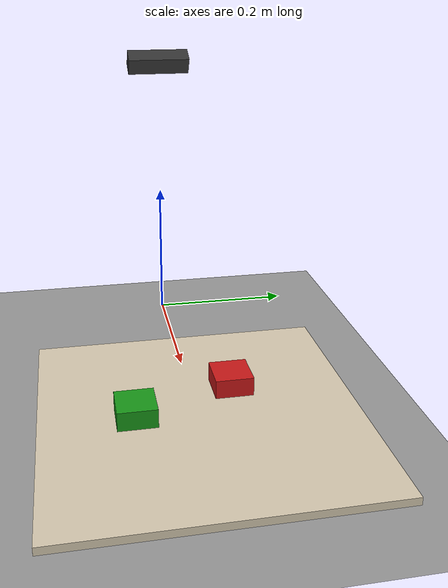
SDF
<?xml version="1.0"?>
<sdf version="1.9">
  <world name="aruco_test_world">

    <!-- Lighting -->
    <light name="sun" type="directional">
      <cast_shadows>true</cast_shadows>
      <direction>-0.5 0.1 -0.9</direction>
      <diffuse>0.9 0.9 0.9 1</diffuse>
      <specular>0.3 0.3 0.3 1</specular>
    </light>

    <!-- Physics -->
    <physics name="1ms" type="ignored">
      <max_step_size>0.001</max_step_size>
      <real_time_factor>1.0</real_time_factor>
    </physics>

    <!-- Required Ignition system plugins -->
    <plugin filename="ignition-gazebo-physics-system"
            name="ignition::gazebo::systems::Physics"/>
    <plugin filename="ignition-gazebo-sensors-system"
            name="ignition::gazebo::systems::Sensors">
      <render_engine>ogre2</render_engine>
    </plugin>
    <plugin filename="ignition-gazebo-scene-broadcaster-system"
            name="ignition::gazebo::systems::SceneBroadcaster"/>
    <plugin filename="ignition-gazebo-user-commands-system"
            name="ignition::gazebo::systems::UserCommands"/>

    <!-- Ground plane -->
    <model name="ground_plane">
      <static>true</static>
      <link name="link">
        <collision name="collision">
          <geometry><plane><normal>0 0 1</normal></plane></geometry>
        </collision>
        <visual name="visual">
          <geometry>
            <plane><normal>0 0 1</normal><size>10 10</size></plane>
          </geometry>
          <material>
            <ambient>0.6 0.6 0.6 1</ambient>
            <diffuse>0.6 0.6 0.6 1</diffuse>
          </material>
        </visual>
      </link>
    </model>

    <!--
      Camera: positioned 40cm above the table surface,
      tilted 30 degrees downward to look at the workspace.
      pose = x y z roll pitch yaw
    -->
    <include>
      <uri>model://realsense_d435i</uri>
      <name>d435i_camera</name>
      <pose>0 0 0.4  0 0.52 0</pose>
    </include>

    <!--
      Puzzle workspace table — represents the physical puzzle board.
      Placed 35cm in front of the camera, flat on the ground.
    -->
    <model name="puzzle_workspace">
      <static>true</static>
      <pose>0.35 0 0.01  0 0 0</pose>
      <link name="link">
        <visual name="visual">
          <geometry>
            <box><size>0.40 0.40 0.01</size></box>
          </geometry>
          <material>
            <ambient>0.85 0.80 0.70 1</ambient>
            <diffuse>0.85 0.80 0.70 1</diffuse>
          </material>
        </visual>
        <collision name="collision">
          <geometry>
            <box><size>0.40 0.40 0.01</size></box>
          </geometry>
        </collision>
      </link>
    </model>

    <!--
      Marker object 1 — represents a puzzle piece with an ArUco marker.
      A bright-coloured block so you can see it clearly in the camera feed.
    -->
    <model name="puzzle_piece_0">
      <static>true</static>
      <pose>0.30 0.05 0.025  0 0 0</pose>
      <link name="link">
        <visual name="visual">
          <geometry><box><size>0.05 0.05 0.03</size></box></geometry>
          <material>
            <ambient>0.8 0.1 0.1 1</ambient>
            <diffuse>0.8 0.1 0.1 1</diffuse>
          </material>
        </visual>
        <collision name="collision">
          <geometry><box><size>0.05 0.05 0.03</size></box></geometry>
        </collision>
      </link>
    </model>

    <!-- Marker object 2 -->
    <model name="puzzle_piece_1">
      <static>true</static>
      <pose>0.35 -0.08 0.025  0 0 0</pose>
      <link name="link">
        <visual name="visual">
          <geometry><box><size>0.05 0.05 0.03</size></box></geometry>
          <material>
            <ambient>0.1 0.6 0.1 1</ambient>
            <diffuse>0.1 0.6 0.1 1</diffuse>
          </material>
        </visual>
        <collision name="collision">
          <geometry><box><size>0.05 0.05 0.03</size></box></geometry>
        </collision>
      </link>
    </model>

  </world>
</sdf>

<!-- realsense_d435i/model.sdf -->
<sdf version="1.9">
  <model name="realsense_d435i">
    <static>true</static>

    <link name="camera_link">

      <!-- Physical body of the camera (small box) -->
      <visual name="body_visual">
        <geometry>
          <box><size>0.025 0.090 0.025</size></box>
        </geometry>
        <material>
          <ambient>0.1 0.1 0.1 1</ambient>
          <diffuse>0.2 0.2 0.2 1</diffuse>
        </material>
      </visual>
      <collision name="body_collision">
        <geometry>
          <box><size>0.025 0.090 0.025</size></box>
        </geometry>
      </collision>

      <sensor name="realsense_d435i" type="rgbd_camera">
        <always_on>true</always_on>
        <update_rate>30</update_rate>
        <topic>realsense</topic>

        <camera name="realsense_d435i">
          <!-- D435i horizontal FOV: 87 degrees -->
          <horizontal_fov>1.5184</horizontal_fov>

          <image>
            <width>640</width>
            <height>480</height>
            <format>RGB_INT8</format>
          </image>

          <!-- Colour clip range -->
          <clip>
            <near>0.1</near>
            <far>10.0</far>
          </clip>

          <!-- Depth sensor settings -->
          <depth_camera>
            <output>depths</output>
            <clip>
              <near>0.1</near>
              <far>10.0</far>
            </clip>
          </depth_camera>

          <!-- Gaussian noise to mimic real sensor noise -->
          <noise>
            <type>gaussian</type>
            <mean>0.0</mean>
            <stddev>0.005</stddev>
          </noise>

          <!-- Sets the optical frame ID published in image headers -->
          <optical_frame_id>camera_color_optical_frame</optical_frame_id>
        </camera>

        <ignition_frame_id>camera_color_optical_frame</ignition_frame_id>
      </sensor>

    </link>
  </model>
</sdf>
